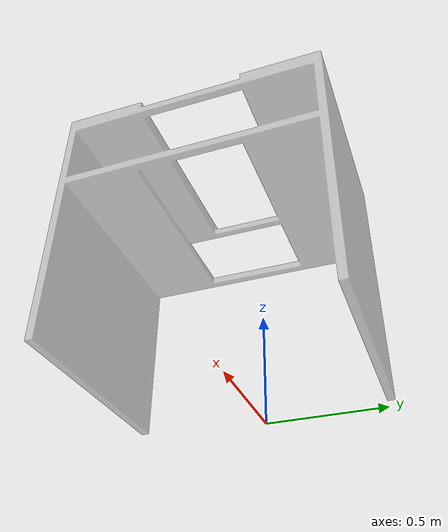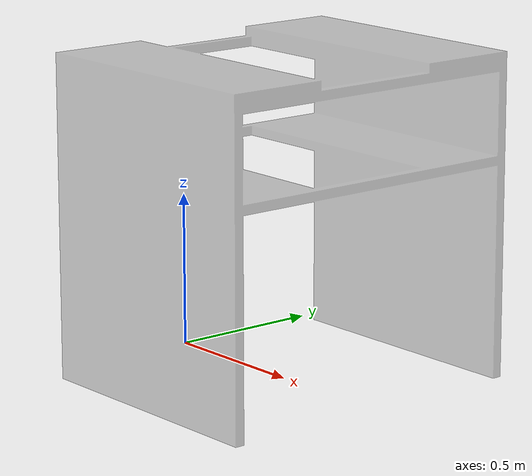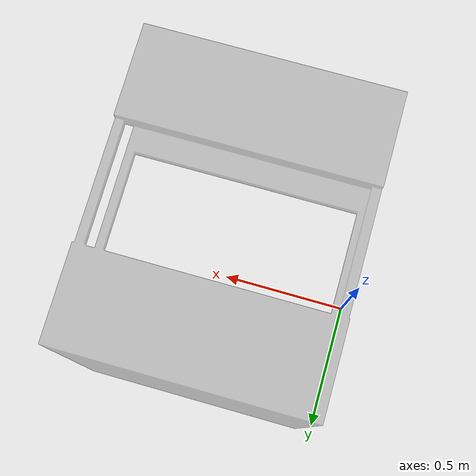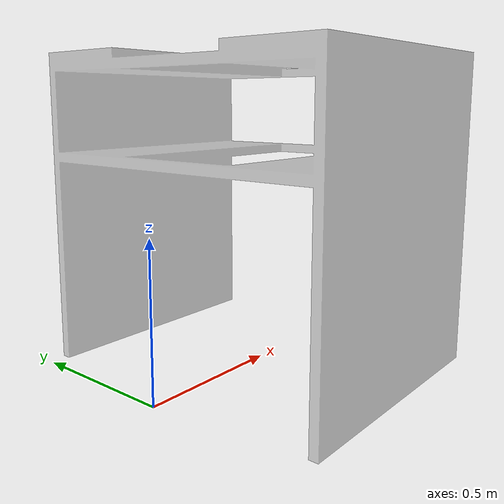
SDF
<?xml version='1.0'?>
<sdf version='1.6'>
  <model name='ur3_table'>
    <link name='table'>
      <pose frame=''>0.06 0 0 0 -0 0</pose>
      <self_collide>0</self_collide>
      <kinematic>0</kinematic>
      <gravity>1</gravity>
      <inertial>
        <mass>1</mass>
        <pose frame=''>0 0 0 0 -0 0</pose>
        <inertia>
          <ixx>1</ixx>
          <ixy>0</ixy>
          <ixz>0</ixz>
          <iyy>1</iyy>
          <iyz>0</iyz>
          <izz>1</izz>
        </inertia>
      </inertial>
      <visual name='table_visual'>
        <geometry>
          <mesh>
            <uri>model://ur3_table/meshes/ur3_table.stl</uri>
            <scale>1 1 1</scale>
          </mesh>
        </geometry>
        <material>
          <script>
            <name>Gazebo/GreyTransparent</name>
            <uri>__default__</uri>
          </script>
          <shader type='pixel'>
            <normal_map>__default__</normal_map>
          </shader>
          <ambient>0.5 0.5 0.5 1</ambient>
          <diffuse>0.5 0.5 0.5 1</diffuse>
          <specular>0 0 0 1</specular>
          <emissive>0 0 0 1</emissive>
        </material>
        <pose frame=''>0 0 0 0 -0 0</pose>
        <transparency>0</transparency>
        <cast_shadows>1</cast_shadows>
      </visual>
      <collision name='table_collision'>
        <laser_retro>0</laser_retro>
        <max_contacts>10</max_contacts>
        <pose frame=''>0.425 0 0.93 0 -0 0</pose>
        <geometry>
          <box>
            <size>0.857346 1.05768 0.2</size>
          </box>
        </geometry>
        <surface>
          <friction>
            <ode>
              <mu>1</mu>
              <mu2>1</mu2>
              <fdir1>0 0 0</fdir1>
              <slip1>0.1</slip1>
              <slip2>0.1</slip2>
            </ode>
            <torsional>
              <coefficient>1</coefficient>
              <patch_radius>0</patch_radius>
              <surface_radius>0</surface_radius>
              <use_patch_radius>1</use_patch_radius>
              <ode>
                <slip>0</slip>
              </ode>
            </torsional>
          </friction>
          <bounce>
            <restitution_coefficient>0</restitution_coefficient>
            <threshold>1e+06</threshold>
          </bounce>
          <contact>
            <collide_without_contact>0</collide_without_contact>
            <collide_without_contact_bitmask>1</collide_without_contact_bitmask>
            <collide_bitmask>1</collide_bitmask>
            <ode>
              <soft_cfm>0</soft_cfm>
              <soft_erp>0.2</soft_erp>
              <kp>1e+13</kp>
              <kd>1</kd>
              <max_vel>0.01</max_vel>
              <min_depth>0</min_depth>
            </ode>
            <bullet>
              <split_impulse>1</split_impulse>
              <split_impulse_penetration_threshold>-0.01</split_impulse_penetration_threshold>
              <soft_cfm>0</soft_cfm>
              <soft_erp>0.2</soft_erp>
              <kp>1e+13</kp>
              <kd>1</kd>
            </bullet>
          </contact>
        </surface>
      </collision>
    </link>
    <static>1</static>
    <allow_auto_disable>1</allow_auto_disable>
  </model>
</sdf>
